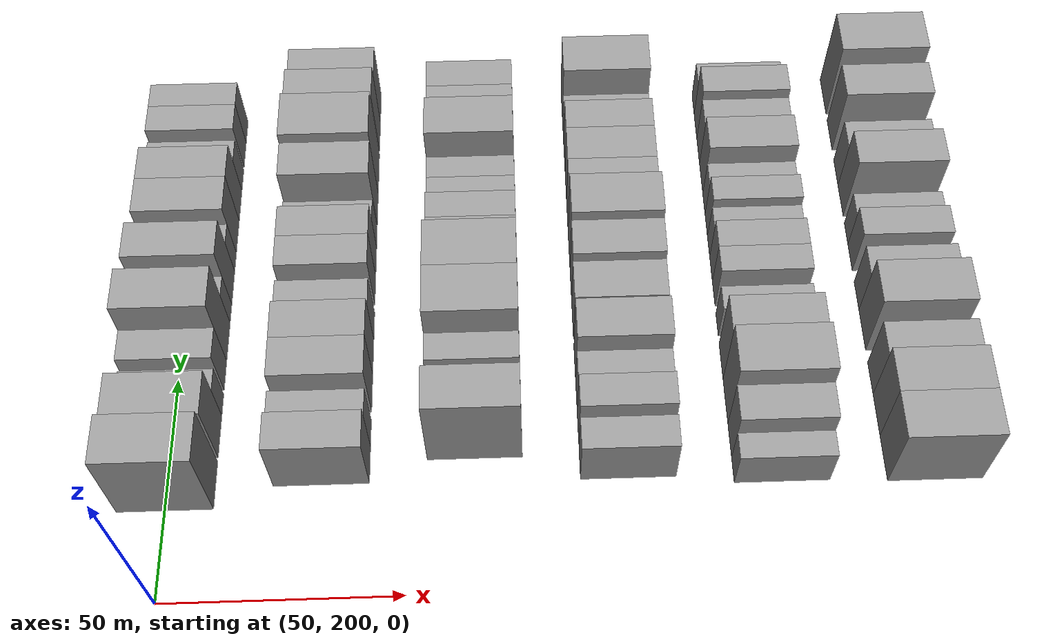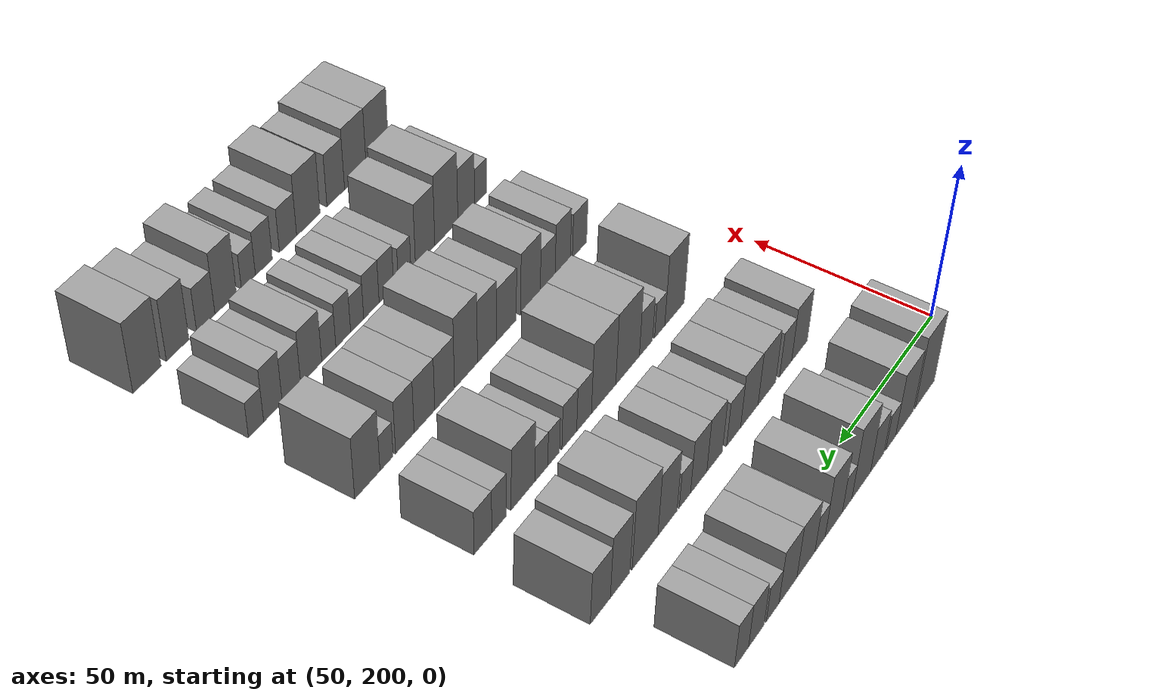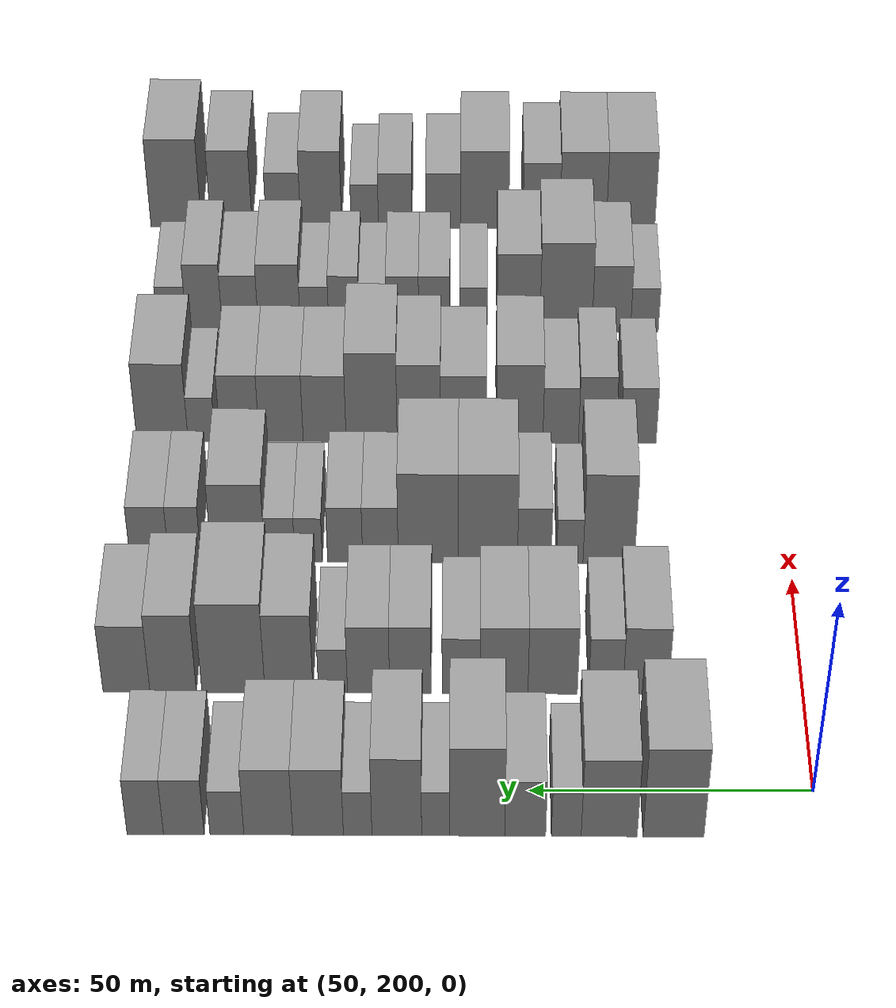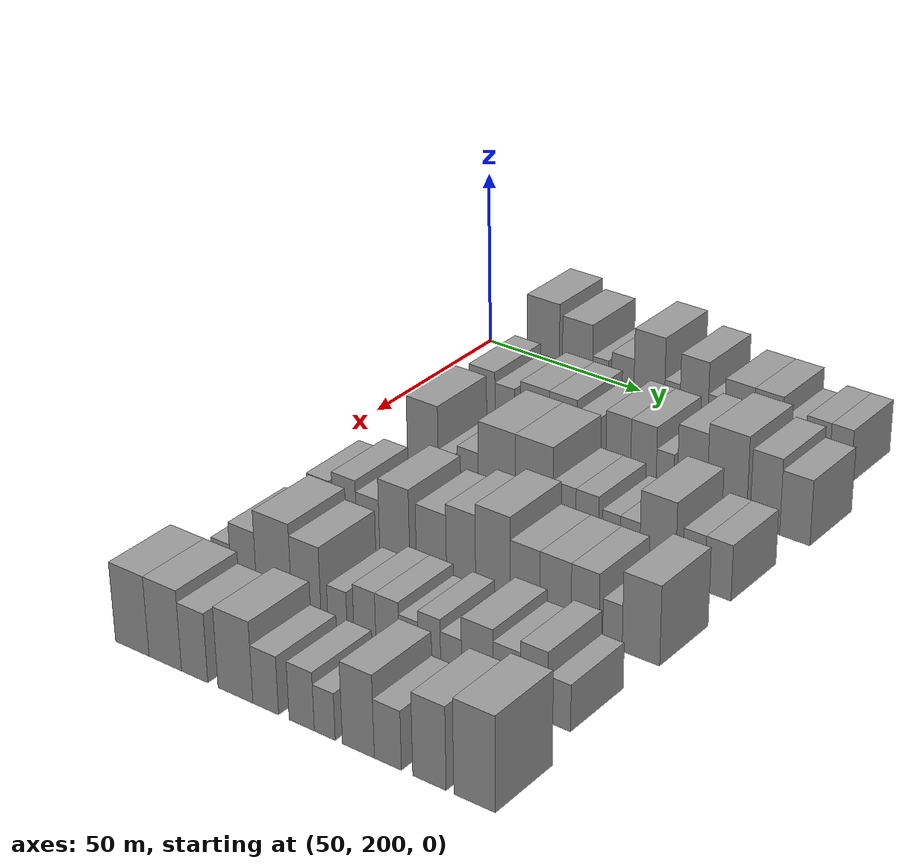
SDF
<sdf version="1.6">
 <world name="default">
  <model name="building_94">
   <static>1</static>
   <pose>50.0000 225.1279 0 0.000000 0.000000 0.000000</pose>
   <link name="link">
    <pose>0 0 12.00 0 0 0</pose>
    <collision name="collision"><geometry><box><size>20.0000 10.5933 24.0000</size></box></geometry></collision>
    <visual name="visual">
     <cast_shadows>0</cast_shadows>
     <geometry><box><size>20.0000 10.5933 24.0000</size></box></geometry>
     <material>
      <script>
       <uri>model://grey_wall/materials/scripts</uri>
       <uri>model://grey_wall/materials/textures</uri>
       <name>vrc/grey_wall</name>
      </script>
     </material>
    </visual>
   </link>
  </model>
  <model name="building_95">
   <static>1</static>
   <pose>50.0000 236.2886 0 0.000000 0.000000 0.000000</pose>
   <link name="link">
    <pose>0 0 10.50 0 0 0</pose>
    <collision name="collision"><geometry><box><size>20.0000 9.7283 21.0000</size></box></geometry></collision>
    <visual name="visual">
     <cast_shadows>0</cast_shadows>
     <geometry><box><size>20.0000 9.7283 21.0000</size></box></geometry>
     <material>
      <script>
       <uri>model://grey_wall/materials/scripts</uri>
       <uri>model://grey_wall/materials/textures</uri>
       <name>vrc/grey_wall</name>
      </script>
     </material>
    </visual>
   </link>
  </model>
  <model name="building_96">
   <static>1</static>
   <pose>50.0000 243.7318 0 0.000000 0.000000 0.000000</pose>
   <link name="link">
    <pose>0 0 6.00 0 0 0</pose>
    <collision name="collision"><geometry><box><size>20.0000 5.1581 12.0000</size></box></geometry></collision>
    <visual name="visual">
     <cast_shadows>0</cast_shadows>
     <geometry><box><size>20.0000 5.1581 12.0000</size></box></geometry>
     <material>
      <script>
       <uri>model://grey_wall/materials/scripts</uri>
       <uri>model://grey_wall/materials/textures</uri>
       <name>vrc/grey_wall</name>
      </script>
     </material>
    </visual>
   </link>
  </model>
  <model name="building_97">
   <static>1</static>
   <pose>50.0000 250.8644 0 0.000000 0.000000 0.000000</pose>
   <link name="link">
    <pose>0 0 7.50 0 0 0</pose>
    <collision name="collision"><geometry><box><size>20.0000 7.1069 15.0000</size></box></geometry></collision>
    <visual name="visual">
     <cast_shadows>0</cast_shadows>
     <geometry><box><size>20.0000 7.1069 15.0000</size></box></geometry>
     <material>
      <script>
       <uri>model://grey_wall/materials/scripts</uri>
       <uri>model://grey_wall/materials/textures</uri>
       <name>vrc/grey_wall</name>
      </script>
     </material>
    </visual>
   </link>
  </model>
  <model name="building_98">
   <static>1</static>
   <pose>50.0000 259.2221 0 0.000000 0.000000 0.000000</pose>
   <link name="link">
    <pose>0 0 12.00 0 0 0</pose>
    <collision name="collision"><geometry><box><size>20.0000 9.6086 24.0000</size></box></geometry></collision>
    <visual name="visual">
     <cast_shadows>0</cast_shadows>
     <geometry><box><size>20.0000 9.6086 24.0000</size></box></geometry>
     <material>
      <script>
       <uri>model://grey_wall/materials/scripts</uri>
       <uri>model://grey_wall/materials/textures</uri>
       <name>vrc/grey_wall</name>
      </script>
     </material>
    </visual>
   </link>
  </model>
  <model name="building_99">
   <static>1</static>
   <pose>50.0000 266.4333 0 0.000000 0.000000 0.000000</pose>
   <link name="link">
    <pose>0 0 6.00 0 0 0</pose>
    <collision name="collision"><geometry><box><size>20.0000 4.8139 12.0000</size></box></geometry></collision>
    <visual name="visual">
     <cast_shadows>0</cast_shadows>
     <geometry><box><size>20.0000 4.8139 12.0000</size></box></geometry>
     <material>
      <script>
       <uri>model://grey_wall/materials/scripts</uri>
       <uri>model://grey_wall/materials/textures</uri>
       <name>vrc/grey_wall</name>
      </script>
     </material>
    </visual>
   </link>
  </model>
  <model name="building_100">
   <static>1</static>
   <pose>50.0000 273.1542 0 0.000000 0.000000 0.000000</pose>
   <link name="link">
    <pose>0 0 10.50 0 0 0</pose>
    <collision name="collision"><geometry><box><size>20.0000 8.6278 21.0000</size></box></geometry></collision>
    <visual name="visual">
     <cast_shadows>0</cast_shadows>
     <geometry><box><size>20.0000 8.6278 21.0000</size></box></geometry>
     <material>
      <script>
       <uri>model://grey_wall/materials/scripts</uri>
       <uri>model://grey_wall/materials/textures</uri>
       <name>vrc/grey_wall</name>
      </script>
     </material>
    </visual>
   </link>
  </model>
  <model name="building_101">
   <static>1</static>
   <pose>50.0000 279.9473 0 0.000000 0.000000 0.000000</pose>
   <link name="link">
    <pose>0 0 6.00 0 0 0</pose>
    <collision name="collision"><geometry><box><size>20.0000 4.9583 12.0000</size></box></geometry></collision>
    <visual name="visual">
     <cast_shadows>0</cast_shadows>
     <geometry><box><size>20.0000 4.9583 12.0000</size></box></geometry>
     <material>
      <script>
       <uri>model://grey_wall/materials/scripts</uri>
       <uri>model://grey_wall/materials/textures</uri>
       <name>vrc/grey_wall</name>
      </script>
     </material>
    </visual>
   </link>
  </model>
  <model name="building_102">
   <static>1</static>
   <pose>50.0000 286.8136 0 0.000000 0.000000 0.000000</pose>
   <link name="link">
    <pose>0 0 9.00 0 0 0</pose>
    <collision name="collision"><geometry><box><size>20.0000 8.7743 18.0000</size></box></geometry></collision>
    <visual name="visual">
     <cast_shadows>0</cast_shadows>
     <geometry><box><size>20.0000 8.7743 18.0000</size></box></geometry>
     <material>
      <script>
       <uri>model://grey_wall/materials/scripts</uri>
       <uri>model://grey_wall/materials/textures</uri>
       <name>vrc/grey_wall</name>
      </script>
     </material>
    </visual>
   </link>
  </model>
  <model name="building_103">
   <static>1</static>
   <pose>50.0000 295.4509 0 0.000000 0.000000 0.000000</pose>
   <link name="link">
    <pose>0 0 9.00 0 0 0</pose>
    <collision name="collision"><geometry><box><size>20.0000 8.5003 18.0000</size></box></geometry></collision>
    <visual name="visual">
     <cast_shadows>0</cast_shadows>
     <geometry><box><size>20.0000 8.5003 18.0000</size></box></geometry>
     <material>
      <script>
       <uri>model://grey_wall/materials/scripts</uri>
       <uri>model://grey_wall/materials/textures</uri>
       <name>vrc/grey_wall</name>
      </script>
     </material>
    </visual>
   </link>
  </model>
  <model name="building_104">
   <static>1</static>
   <pose>50.0000 302.6465 0 0.000000 0.000000 0.000000</pose>
   <link name="link">
    <pose>0 0 6.00 0 0 0</pose>
    <collision name="collision"><geometry><box><size>20.0000 5.8908 12.0000</size></box></geometry></collision>
    <visual name="visual">
     <cast_shadows>0</cast_shadows>
     <geometry><box><size>20.0000 5.8908 12.0000</size></box></geometry>
     <material>
      <script>
       <uri>model://grey_wall/materials/scripts</uri>
       <uri>model://grey_wall/materials/textures</uri>
       <name>vrc/grey_wall</name>
      </script>
     </material>
    </visual>
   </link>
  </model>
  <model name="building_105">
   <static>1</static>
   <pose>50.0000 310.1308 0 0.000000 0.000000 0.000000</pose>
   <link name="link">
    <pose>0 0 7.50 0 0 0</pose>
    <collision name="collision"><geometry><box><size>20.0000 7.0779 15.0000</size></box></geometry></collision>
    <visual name="visual">
     <cast_shadows>0</cast_shadows>
     <geometry><box><size>20.0000 7.0779 15.0000</size></box></geometry>
     <material>
      <script>
       <uri>model://grey_wall/materials/scripts</uri>
       <uri>model://grey_wall/materials/textures</uri>
       <name>vrc/grey_wall</name>
      </script>
     </material>
    </visual>
   </link>
  </model>
  <model name="building_106">
   <static>1</static>
   <pose>50.0000 316.8324 0 0.000000 0.000000 0.000000</pose>
   <link name="link">
    <pose>0 0 7.50 0 0 0</pose>
    <collision name="collision"><geometry><box><size>20.0000 6.3253 15.0000</size></box></geometry></collision>
    <visual name="visual">
     <cast_shadows>0</cast_shadows>
     <geometry><box><size>20.0000 6.3253 15.0000</size></box></geometry>
     <material>
      <script>
       <uri>model://grey_wall/materials/scripts</uri>
       <uri>model://grey_wall/materials/textures</uri>
       <name>vrc/grey_wall</name>
      </script>
     </material>
    </visual>
   </link>
  </model>
  <model name="building_220">
   <static>1</static>
   <pose>82.0000 228.6786 0 0.000000 0.000000 0.000000</pose>
   <link name="link">
    <pose>0 0 9.00 0 0 0</pose>
    <collision name="collision"><geometry><box><size>20.0000 8.2654 18.0000</size></box></geometry></collision>
    <visual name="visual">
     <cast_shadows>0</cast_shadows>
     <geometry><box><size>20.0000 8.2654 18.0000</size></box></geometry>
     <material>
      <script>
       <uri>model://grey_wall/materials/scripts</uri>
       <uri>model://grey_wall/materials/textures</uri>
       <name>vrc/grey_wall</name>
      </script>
     </material>
    </visual>
   </link>
  </model>
  <model name="building_221">
   <static>1</static>
   <pose>82.0000 235.9251 0 0.000000 0.000000 0.000000</pose>
   <link name="link">
    <pose>0 0 7.50 0 0 0</pose>
    <collision name="collision"><geometry><box><size>20.0000 6.2278 15.0000</size></box></geometry></collision>
    <visual name="visual">
     <cast_shadows>0</cast_shadows>
     <geometry><box><size>20.0000 6.2278 15.0000</size></box></geometry>
     <material>
      <script>
       <uri>model://grey_wall/materials/scripts</uri>
       <uri>model://grey_wall/materials/textures</uri>
       <name>vrc/grey_wall</name>
      </script>
     </material>
    </visual>
   </link>
  </model>
  <model name="building_222">
   <static>1</static>
   <pose>82.0000 245.5191 0 0.000000 0.000000 0.000000</pose>
   <link name="link">
    <pose>0 0 9.00 0 0 0</pose>
    <collision name="collision"><geometry><box><size>20.0000 8.9601 18.0000</size></box></geometry></collision>
    <visual name="visual">
     <cast_shadows>0</cast_shadows>
     <geometry><box><size>20.0000 8.9601 18.0000</size></box></geometry>
     <material>
      <script>
       <uri>model://grey_wall/materials/scripts</uri>
       <uri>model://grey_wall/materials/textures</uri>
       <name>vrc/grey_wall</name>
      </script>
     </material>
    </visual>
   </link>
  </model>
  <model name="building_223">
   <static>1</static>
   <pose>82.0000 254.3546 0 0.000000 0.000000 0.000000</pose>
   <link name="link">
    <pose>0 0 9.00 0 0 0</pose>
    <collision name="collision"><geometry><box><size>20.0000 8.7109 18.0000</size></box></geometry></collision>
    <visual name="visual">
     <cast_shadows>0</cast_shadows>
     <geometry><box><size>20.0000 8.7109 18.0000</size></box></geometry>
     <material>
      <script>
       <uri>model://grey_wall/materials/scripts</uri>
       <uri>model://grey_wall/materials/textures</uri>
       <name>vrc/grey_wall</name>
      </script>
     </material>
    </visual>
   </link>
  </model>
  <model name="building_224">
   <static>1</static>
   <pose>82.0000 262.1255 0 0.000000 0.000000 0.000000</pose>
   <link name="link">
    <pose>0 0 7.50 0 0 0</pose>
    <collision name="collision"><geometry><box><size>20.0000 6.8310 15.0000</size></box></geometry></collision>
    <visual name="visual">
     <cast_shadows>0</cast_shadows>
     <geometry><box><size>20.0000 6.8310 15.0000</size></box></geometry>
     <material>
      <script>
       <uri>model://grey_wall/materials/scripts</uri>
       <uri>model://grey_wall/materials/textures</uri>
       <name>vrc/grey_wall</name>
      </script>
     </material>
    </visual>
   </link>
  </model>
  <model name="building_225">
   <static>1</static>
   <pose>82.0000 271.2962 0 0.000000 0.000000 0.000000</pose>
   <link name="link">
    <pose>0 0 9.00 0 0 0</pose>
    <collision name="collision"><geometry><box><size>20.0000 7.5104 18.0000</size></box></geometry></collision>
    <visual name="visual">
     <cast_shadows>0</cast_shadows>
     <geometry><box><size>20.0000 7.5104 18.0000</size></box></geometry>
     <material>
      <script>
       <uri>model://grey_wall/materials/scripts</uri>
       <uri>model://grey_wall/materials/textures</uri>
       <name>vrc/grey_wall</name>
      </script>
     </material>
    </visual>
   </link>
  </model>
  <model name="building_226">
   <static>1</static>
   <pose>82.0000 278.8801 0 0.000000 0.000000 0.000000</pose>
   <link name="link">
    <pose>0 0 9.00 0 0 0</pose>
    <collision name="collision"><geometry><box><size>20.0000 7.6573 18.0000</size></box></geometry></collision>
    <visual name="visual">
     <cast_shadows>0</cast_shadows>
     <geometry><box><size>20.0000 7.6573 18.0000</size></box></geometry>
     <material>
      <script>
       <uri>model://grey_wall/materials/scripts</uri>
       <uri>model://grey_wall/materials/textures</uri>
       <name>vrc/grey_wall</name>
      </script>
     </material>
    </visual>
   </link>
  </model>
  <model name="building_227">
   <static>1</static>
   <pose>82.0000 285.3272 0 0.000000 0.000000 0.000000</pose>
   <link name="link">
    <pose>0 0 6.00 0 0 0</pose>
    <collision name="collision"><geometry><box><size>20.0000 5.2370 12.0000</size></box></geometry></collision>
    <visual name="visual">
     <cast_shadows>0</cast_shadows>
     <geometry><box><size>20.0000 5.2370 12.0000</size></box></geometry>
     <material>
      <script>
       <uri>model://grey_wall/materials/scripts</uri>
       <uri>model://grey_wall/materials/textures</uri>
       <name>vrc/grey_wall</name>
      </script>
     </material>
    </visual>
   </link>
  </model>
  <model name="building_228">
   <static>1</static>
   <pose>82.0000 293.3117 0 0.000000 0.000000 0.000000</pose>
   <link name="link">
    <pose>0 0 10.50 0 0 0</pose>
    <collision name="collision"><geometry><box><size>20.0000 8.7321 21.0000</size></box></geometry></collision>
    <visual name="visual">
     <cast_shadows>0</cast_shadows>
     <geometry><box><size>20.0000 8.7321 21.0000</size></box></geometry>
     <material>
      <script>
       <uri>model://grey_wall/materials/scripts</uri>
       <uri>model://grey_wall/materials/textures</uri>
       <name>vrc/grey_wall</name>
      </script>
     </material>
    </visual>
   </link>
  </model>
  <model name="building_229">
   <static>1</static>
   <pose>82.0000 303.3961 0 0.000000 0.000000 0.000000</pose>
   <link name="link">
    <pose>0 0 12.00 0 0 0</pose>
    <collision name="collision"><geometry><box><size>20.0000 11.4367 24.0000</size></box></geometry></collision>
    <visual name="visual">
     <cast_shadows>0</cast_shadows>
     <geometry><box><size>20.0000 11.4367 24.0000</size></box></geometry>
     <material>
      <script>
       <uri>model://grey_wall/materials/scripts</uri>
       <uri>model://grey_wall/materials/textures</uri>
       <name>vrc/grey_wall</name>
      </script>
     </material>
    </visual>
   </link>
  </model>
  <model name="building_230">
   <static>1</static>
   <pose>82.0000 314.3326 0 0.000000 0.000000 0.000000</pose>
   <link name="link">
    <pose>0 0 10.50 0 0 0</pose>
    <collision name="collision"><geometry><box><size>20.0000 8.4361 21.0000</size></box></geometry></collision>
    <visual name="visual">
     <cast_shadows>0</cast_shadows>
     <geometry><box><size>20.0000 8.4361 21.0000</size></box></geometry>
     <material>
      <script>
       <uri>model://grey_wall/materials/scripts</uri>
       <uri>model://grey_wall/materials/textures</uri>
       <name>vrc/grey_wall</name>
      </script>
     </material>
    </visual>
   </link>
  </model>
  <model name="building_231">
   <static>1</static>
   <pose>82.0000 322.8037 0 0.000000 0.000000 0.000000</pose>
   <link name="link">
    <pose>0 0 9.00 0 0 0</pose>
    <collision name="collision"><geometry><box><size>20.0000 8.5062 18.0000</size></box></geometry></collision>
    <visual name="visual">
     <cast_shadows>0</cast_shadows>
     <geometry><box><size>20.0000 8.5062 18.0000</size></box></geometry>
     <material>
      <script>
       <uri>model://grey_wall/materials/scripts</uri>
       <uri>model://grey_wall/materials/textures</uri>
       <name>vrc/grey_wall</name>
      </script>
     </material>
    </visual>
   </link>
  </model>
  <model name="building_347">
   <static>1</static>
   <pose>114.0000 234.3363 0 0.000000 0.000000 0.000000</pose>
   <link name="link">
    <pose>0 0 12.00 0 0 0</pose>
    <collision name="collision"><geometry><box><size>20.0000 9.7286 24.0000</size></box></geometry></collision>
    <visual name="visual">
     <cast_shadows>0</cast_shadows>
     <geometry><box><size>20.0000 9.7286 24.0000</size></box></geometry>
     <material>
      <script>
       <uri>model://grey_wall/materials/scripts</uri>
       <uri>model://grey_wall/materials/textures</uri>
       <name>vrc/grey_wall</name>
      </script>
     </material>
    </visual>
   </link>
  </model>
  <model name="building_348">
   <static>1</static>
   <pose>114.0000 241.6982 0 0.000000 0.000000 0.000000</pose>
   <link name="link">
    <pose>0 0 6.00 0 0 0</pose>
    <collision name="collision"><geometry><box><size>20.0000 4.9952 12.0000</size></box></geometry></collision>
    <visual name="visual">
     <cast_shadows>0</cast_shadows>
     <geometry><box><size>20.0000 4.9952 12.0000</size></box></geometry>
     <material>
      <script>
       <uri>model://grey_wall/materials/scripts</uri>
       <uri>model://grey_wall/materials/textures</uri>
       <name>vrc/grey_wall</name>
      </script>
     </material>
    </visual>
   </link>
  </model>
  <model name="building_349">
   <static>1</static>
   <pose>114.0000 248.3928 0 0.000000 0.000000 0.000000</pose>
   <link name="link">
    <pose>0 0 7.50 0 0 0</pose>
    <collision name="collision"><geometry><box><size>20.0000 6.3942 15.0000</size></box></geometry></collision>
    <visual name="visual">
     <cast_shadows>0</cast_shadows>
     <geometry><box><size>20.0000 6.3942 15.0000</size></box></geometry>
     <material>
      <script>
       <uri>model://grey_wall/materials/scripts</uri>
       <uri>model://grey_wall/materials/textures</uri>
       <name>vrc/grey_wall</name>
      </script>
     </material>
    </visual>
   </link>
  </model>
  <model name="building_350">
   <static>1</static>
   <pose>114.0000 257.1950 0 0.000000 0.000000 0.000000</pose>
   <link name="link">
    <pose>0 0 12.00 0 0 0</pose>
    <collision name="collision"><geometry><box><size>20.0000 11.2101 24.0000</size></box></geometry></collision>
    <visual name="visual">
     <cast_shadows>0</cast_shadows>
     <geometry><box><size>20.0000 11.2101 24.0000</size></box></geometry>
     <material>
      <script>
       <uri>model://grey_wall/materials/scripts</uri>
       <uri>model://grey_wall/materials/textures</uri>
       <name>vrc/grey_wall</name>
      </script>
     </material>
    </visual>
   </link>
  </model>
  <model name="building_351">
   <static>1</static>
   <pose>114.0000 268.4526 0 0.000000 0.000000 0.000000</pose>
   <link name="link">
    <pose>0 0 12.00 0 0 0</pose>
    <collision name="collision"><geometry><box><size>20.0000 11.3052 24.0000</size></box></geometry></collision>
    <visual name="visual">
     <cast_shadows>0</cast_shadows>
     <geometry><box><size>20.0000 11.3052 24.0000</size></box></geometry>
     <material>
      <script>
       <uri>model://grey_wall/materials/scripts</uri>
       <uri>model://grey_wall/materials/textures</uri>
       <name>vrc/grey_wall</name>
      </script>
     </material>
    </visual>
   </link>
  </model>
  <model name="building_352">
   <static>1</static>
   <pose>114.0000 277.4631 0 0.000000 0.000000 0.000000</pose>
   <link name="link">
    <pose>0 0 7.50 0 0 0</pose>
    <collision name="collision"><geometry><box><size>20.0000 6.7157 15.0000</size></box></geometry></collision>
    <visual name="visual">
     <cast_shadows>0</cast_shadows>
     <geometry><box><size>20.0000 6.7157 15.0000</size></box></geometry>
     <material>
      <script>
       <uri>model://grey_wall/materials/scripts</uri>
       <uri>model://grey_wall/materials/textures</uri>
       <name>vrc/grey_wall</name>
      </script>
     </material>
    </visual>
   </link>
  </model>
  <model name="building_353">
   <static>1</static>
   <pose>114.0000 284.1333 0 0.000000 0.000000 0.000000</pose>
   <link name="link">
    <pose>0 0 7.50 0 0 0</pose>
    <collision name="collision"><geometry><box><size>20.0000 6.6247 15.0000</size></box></geometry></collision>
    <visual name="visual">
     <cast_shadows>0</cast_shadows>
     <geometry><box><size>20.0000 6.6247 15.0000</size></box></geometry>
     <material>
      <script>
       <uri>model://grey_wall/materials/scripts</uri>
       <uri>model://grey_wall/materials/textures</uri>
       <name>vrc/grey_wall</name>
      </script>
     </material>
    </visual>
   </link>
  </model>
  <model name="building_354">
   <static>1</static>
   <pose>114.0000 291.0380 0 0.000000 0.000000 0.000000</pose>
   <link name="link">
    <pose>0 0 6.00 0 0 0</pose>
    <collision name="collision"><geometry><box><size>20.0000 5.1848 12.0000</size></box></geometry></collision>
    <visual name="visual">
     <cast_shadows>0</cast_shadows>
     <geometry><box><size>20.0000 5.1848 12.0000</size></box></geometry>
     <material>
      <script>
       <uri>model://grey_wall/materials/scripts</uri>
       <uri>model://grey_wall/materials/textures</uri>
       <name>vrc/grey_wall</name>
      </script>
     </material>
    </visual>
   </link>
  </model>
  <model name="building_355">
   <static>1</static>
   <pose>114.0000 296.4547 0 0.000000 0.000000 0.000000</pose>
   <link name="link">
    <pose>0 0 6.00 0 0 0</pose>
    <collision name="collision"><geometry><box><size>20.0000 5.6485 12.0000</size></box></geometry></collision>
    <visual name="visual">
     <cast_shadows>0</cast_shadows>
     <geometry><box><size>20.0000 5.6485 12.0000</size></box></geometry>
     <material>
      <script>
       <uri>model://grey_wall/materials/scripts</uri>
       <uri>model://grey_wall/materials/textures</uri>
       <name>vrc/grey_wall</name>
      </script>
     </material>
    </visual>
   </link>
  </model>
  <model name="building_356">
   <static>1</static>
   <pose>114.0000 304.3384 0 0.000000 0.000000 0.000000</pose>
   <link name="link">
    <pose>0 0 10.50 0 0 0</pose>
    <collision name="collision"><geometry><box><size>20.0000 10.1188 21.0000</size></box></geometry></collision>
    <visual name="visual">
     <cast_shadows>0</cast_shadows>
     <geometry><box><size>20.0000 10.1188 21.0000</size></box></geometry>
     <material>
      <script>
       <uri>model://grey_wall/materials/scripts</uri>
       <uri>model://grey_wall/materials/textures</uri>
       <name>vrc/grey_wall</name>
      </script>
     </material>
    </visual>
   </link>
  </model>
  <model name="building_357">
   <static>1</static>
   <pose>114.0000 314.4552 0 0.000000 0.000000 0.000000</pose>
   <link name="link">
    <pose>0 0 7.50 0 0 0</pose>
    <collision name="collision"><geometry><box><size>20.0000 6.1148 15.0000</size></box></geometry></collision>
    <visual name="visual">
     <cast_shadows>0</cast_shadows>
     <geometry><box><size>20.0000 6.1148 15.0000</size></box></geometry>
     <material>
      <script>
       <uri>model://grey_wall/materials/scripts</uri>
       <uri>model://grey_wall/materials/textures</uri>
       <name>vrc/grey_wall</name>
      </script>
     </material>
    </visual>
   </link>
  </model>
  <model name="building_358">
   <static>1</static>
   <pose>114.0000 321.1528 0 0.000000 0.000000 0.000000</pose>
   <link name="link">
    <pose>0 0 7.50 0 0 0</pose>
    <collision name="collision"><geometry><box><size>20.0000 7.2803 15.0000</size></box></geometry></collision>
    <visual name="visual">
     <cast_shadows>0</cast_shadows>
     <geometry><box><size>20.0000 7.2803 15.0000</size></box></geometry>
     <material>
      <script>
       <uri>model://grey_wall/materials/scripts</uri>
       <uri>model://grey_wall/materials/textures</uri>
       <name>vrc/grey_wall</name>
      </script>
     </material>
    </visual>
   </link>
  </model>
  <model name="building_458">
   <static>1</static>
   <pose>146.0000 227.4841 0 0.000000 0.000000 0.000000</pose>
   <link name="link">
    <pose>0 0 7.50 0 0 0</pose>
    <collision name="collision"><geometry><box><size>20.0000 7.0042 15.0000</size></box></geometry></collision>
    <visual name="visual">
     <cast_shadows>0</cast_shadows>
     <geometry><box><size>20.0000 7.0042 15.0000</size></box></geometry>
     <material>
      <script>
       <uri>model://grey_wall/materials/scripts</uri>
       <uri>model://grey_wall/materials/textures</uri>
       <name>vrc/grey_wall</name>
      </script>
     </material>
    </visual>
   </link>
  </model>
  <model name="building_459">
   <static>1</static>
   <pose>146.0000 235.6304 0 0.000000 0.000000 0.000000</pose>
   <link name="link">
    <pose>0 0 9.00 0 0 0</pose>
    <collision name="collision"><geometry><box><size>20.0000 7.2883 18.0000</size></box></geometry></collision>
    <visual name="visual">
     <cast_shadows>0</cast_shadows>
     <geometry><box><size>20.0000 7.2883 18.0000</size></box></geometry>
     <material>
      <script>
       <uri>model://grey_wall/materials/scripts</uri>
       <uri>model://grey_wall/materials/textures</uri>
       <name>vrc/grey_wall</name>
      </script>
     </material>
    </visual>
   </link>
  </model>
  <model name="building_460">
   <static>1</static>
   <pose>146.0000 242.7772 0 0.000000 0.000000 0.000000</pose>
   <link name="link">
    <pose>0 0 7.50 0 0 0</pose>
    <collision name="collision"><geometry><box><size>20.0000 7.0054 15.0000</size></box></geometry></collision>
    <visual name="visual">
     <cast_shadows>0</cast_shadows>
     <geometry><box><size>20.0000 7.0054 15.0000</size></box></geometry>
     <material>
      <script>
       <uri>model://grey_wall/materials/scripts</uri>
       <uri>model://grey_wall/materials/textures</uri>
       <name>vrc/grey_wall</name>
      </script>
     </material>
    </visual>
   </link>
  </model>
  <model name="building_461">
   <static>1</static>
   <pose>146.0000 250.8493 0 0.000000 0.000000 0.000000</pose>
   <link name="link">
    <pose>0 0 10.50 0 0 0</pose>
    <collision name="collision"><geometry><box><size>20.0000 9.1389 21.0000</size></box></geometry></collision>
    <visual name="visual">
     <cast_shadows>0</cast_shadows>
     <geometry><box><size>20.0000 9.1389 21.0000</size></box></geometry>
     <material>
      <script>
       <uri>model://grey_wall/materials/scripts</uri>
       <uri>model://grey_wall/materials/textures</uri>
       <name>vrc/grey_wall</name>
      </script>
     </material>
    </visual>
   </link>
  </model>
  <model name="building_462">
   <static>1</static>
   <pose>146.0000 261.9082 0 0.000000 0.000000 0.000000</pose>
   <link name="link">
    <pose>0 0 9.00 0 0 0</pose>
    <collision name="collision"><geometry><box><size>20.0000 8.9789 18.0000</size></box></geometry></collision>
    <visual name="visual">
     <cast_shadows>0</cast_shadows>
     <geometry><box><size>20.0000 8.9789 18.0000</size></box></geometry>
     <material>
      <script>
       <uri>model://grey_wall/materials/scripts</uri>
       <uri>model://grey_wall/materials/textures</uri>
       <name>vrc/grey_wall</name>
      </script>
     </material>
    </visual>
   </link>
  </model>
  <model name="building_463">
   <static>1</static>
   <pose>146.0000 270.6657 0 0.000000 0.000000 0.000000</pose>
   <link name="link">
    <pose>0 0 10.50 0 0 0</pose>
    <collision name="collision"><geometry><box><size>20.0000 8.5362 21.0000</size></box></geometry></collision>
    <visual name="visual">
     <cast_shadows>0</cast_shadows>
     <geometry><box><size>20.0000 8.5362 21.0000</size></box></geometry>
     <material>
      <script>
       <uri>model://grey_wall/materials/scripts</uri>
       <uri>model://grey_wall/materials/textures</uri>
       <name>vrc/grey_wall</name>
      </script>
     </material>
    </visual>
   </link>
  </model>
  <model name="building_464">
   <static>1</static>
   <pose>146.0000 279.9501 0 0.000000 0.000000 0.000000</pose>
   <link name="link">
    <pose>0 0 12.00 0 0 0</pose>
    <collision name="collision"><geometry><box><size>20.0000 10.0325 24.0000</size></box></geometry></collision>
    <visual name="visual">
     <cast_shadows>0</cast_shadows>
     <geometry><box><size>20.0000 10.0325 24.0000</size></box></geometry>
     <material>
      <script>
       <uri>model://grey_wall/materials/scripts</uri>
       <uri>model://grey_wall/materials/textures</uri>
       <name>vrc/grey_wall</name>
      </script>
     </material>
    </visual>
   </link>
  </model>
  <model name="building_465">
   <static>1</static>
   <pose>146.0000 289.1864 0 0.000000 0.000000 0.000000</pose>
   <link name="link">
    <pose>0 0 9.00 0 0 0</pose>
    <collision name="collision"><geometry><box><size>20.0000 8.4400 18.0000</size></box></geometry></collision>
    <visual name="visual">
     <cast_shadows>0</cast_shadows>
     <geometry><box><size>20.0000 8.4400 18.0000</size></box></geometry>
     <material>
      <script>
       <uri>model://grey_wall/materials/scripts</uri>
       <uri>model://grey_wall/materials/textures</uri>
       <name>vrc/grey_wall</name>
      </script>
     </material>
    </visual>
   </link>
  </model>
  <model name="building_466">
   <static>1</static>
   <pose>146.0000 297.7443 0 0.000000 0.000000 0.000000</pose>
   <link name="link">
    <pose>0 0 9.00 0 0 0</pose>
    <collision name="collision"><geometry><box><size>20.0000 8.6758 18.0000</size></box></geometry></collision>
    <visual name="visual">
     <cast_shadows>0</cast_shadows>
     <geometry><box><size>20.0000 8.6758 18.0000</size></box></geometry>
     <material>
      <script>
       <uri>model://grey_wall/materials/scripts</uri>
       <uri>model://grey_wall/materials/textures</uri>
       <name>vrc/grey_wall</name>
      </script>
     </material>
    </visual>
   </link>
  </model>
  <model name="building_467">
   <static>1</static>
   <pose>146.0000 305.9208 0 0.000000 0.000000 0.000000</pose>
   <link name="link">
    <pose>0 0 9.00 0 0 0</pose>
    <collision name="collision"><geometry><box><size>20.0000 7.6772 18.0000</size></box></geometry></collision>
    <visual name="visual">
     <cast_shadows>0</cast_shadows>
     <geometry><box><size>20.0000 7.6772 18.0000</size></box></geometry>
     <material>
      <script>
       <uri>model://grey_wall/materials/scripts</uri>
       <uri>model://grey_wall/materials/textures</uri>
       <name>vrc/grey_wall</name>
      </script>
     </material>
    </visual>
   </link>
  </model>
  <model name="building_468">
   <static>1</static>
   <pose>146.0000 313.4231 0 0.000000 0.000000 0.000000</pose>
   <link name="link">
    <pose>0 0 6.00 0 0 0</pose>
    <collision name="collision"><geometry><box><size>20.0000 5.3275 12.0000</size></box></geometry></collision>
    <visual name="visual">
     <cast_shadows>0</cast_shadows>
     <geometry><box><size>20.0000 5.3275 12.0000</size></box></geometry>
     <material>
      <script>
       <uri>model://grey_wall/materials/scripts</uri>
       <uri>model://grey_wall/materials/textures</uri>
       <name>vrc/grey_wall</name>
      </script>
     </material>
    </visual>
   </link>
  </model>
  <model name="building_469">
   <static>1</static>
   <pose>146.0000 321.1285 0 0.000000 0.000000 0.000000</pose>
   <link name="link">
    <pose>0 0 10.50 0 0 0</pose>
    <collision name="collision"><geometry><box><size>20.0000 10.0833 21.0000</size></box></geometry></collision>
    <visual name="visual">
     <cast_shadows>0</cast_shadows>
     <geometry><box><size>20.0000 10.0833 21.0000</size></box></geometry>
     <material>
      <script>
       <uri>model://grey_wall/materials/scripts</uri>
       <uri>model://grey_wall/materials/textures</uri>
       <name>vrc/grey_wall</name>
      </script>
     </material>
    </visual>
   </link>
  </model>
  <model name="building_585">
   <static>1</static>
   <pose>178.0000 224.9964 0 0.000000 0.000000 0.000000</pose>
   <link name="link">
    <pose>0 0 6.00 0 0 0</pose>
    <collision name="collision"><geometry><box><size>20.0000 5.6981 12.0000</size></box></geometry></collision>
    <visual name="visual">
     <cast_shadows>0</cast_shadows>
     <geometry><box><size>20.0000 5.6981 12.0000</size></box></geometry>
     <material>
      <script>
       <uri>model://grey_wall/materials/scripts</uri>
       <uri>model://grey_wall/materials/textures</uri>
       <name>vrc/grey_wall</name>
      </script>
     </material>
    </visual>
   </link>
  </model>
  <model name="building_586">
   <static>1</static>
   <pose>178.0000 231.7770 0 0.000000 0.000000 0.000000</pose>
   <link name="link">
    <pose>0 0 9.00 0 0 0</pose>
    <collision name="collision"><geometry><box><size>20.0000 7.8631 18.0000</size></box></geometry></collision>
    <visual name="visual">
     <cast_shadows>0</cast_shadows>
     <geometry><box><size>20.0000 7.8631 18.0000</size></box></geometry>
     <material>
      <script>
       <uri>model://grey_wall/materials/scripts</uri>
       <uri>model://grey_wall/materials/textures</uri>
       <name>vrc/grey_wall</name>
      </script>
     </material>
    </visual>
   </link>
  </model>
  <model name="building_587">
   <static>1</static>
   <pose>178.0000 241.0369 0 0.000000 0.000000 0.000000</pose>
   <link name="link">
    <pose>0 0 12.00 0 0 0</pose>
    <collision name="collision"><geometry><box><size>20.0000 10.6567 24.0000</size></box></geometry></collision>
    <visual name="visual">
     <cast_shadows>0</cast_shadows>
     <geometry><box><size>20.0000 10.6567 24.0000</size></box></geometry>
     <material>
      <script>
       <uri>model://grey_wall/materials/scripts</uri>
       <uri>model://grey_wall/materials/textures</uri>
       <name>vrc/grey_wall</name>
      </script>
     </material>
    </visual>
   </link>
  </model>
  <model name="building_588">
   <static>1</static>
   <pose>178.0000 250.7527 0 0.000000 0.000000 0.000000</pose>
   <link name="link">
    <pose>0 0 10.50 0 0 0</pose>
    <collision name="collision"><geometry><box><size>20.0000 8.7750 21.0000</size></box></geometry></collision>
    <visual name="visual">
     <cast_shadows>0</cast_shadows>
     <geometry><box><size>20.0000 8.7750 21.0000</size></box></geometry>
     <material>
      <script>
       <uri>model://grey_wall/materials/scripts</uri>
       <uri>model://grey_wall/materials/textures</uri>
       <name>vrc/grey_wall</name>
      </script>
     </material>
    </visual>
   </link>
  </model>
  <model name="building_589">
   <static>1</static>
   <pose>178.0000 259.9557 0 0.000000 0.000000 0.000000</pose>
   <link name="link">
    <pose>0 0 6.00 0 0 0</pose>
    <collision name="collision"><geometry><box><size>20.0000 5.6312 12.0000</size></box></geometry></collision>
    <visual name="visual">
     <cast_shadows>0</cast_shadows>
     <geometry><box><size>20.0000 5.6312 12.0000</size></box></geometry>
     <material>
      <script>
       <uri>model://grey_wall/materials/scripts</uri>
       <uri>model://grey_wall/materials/textures</uri>
       <name>vrc/grey_wall</name>
      </script>
     </material>
    </visual>
   </link>
  </model>
  <model name="building_590">
   <static>1</static>
   <pose>178.0000 267.9493 0 0.000000 0.000000 0.000000</pose>
   <link name="link">
    <pose>0 0 7.50 0 0 0</pose>
    <collision name="collision"><geometry><box><size>20.0000 6.3559 15.0000</size></box></geometry></collision>
    <visual name="visual">
     <cast_shadows>0</cast_shadows>
     <geometry><box><size>20.0000 6.3559 15.0000</size></box></geometry>
     <material>
      <script>
       <uri>model://grey_wall/materials/scripts</uri>
       <uri>model://grey_wall/materials/textures</uri>
       <name>vrc/grey_wall</name>
      </script>
     </material>
    </visual>
   </link>
  </model>
  <model name="building_591">
   <static>1</static>
   <pose>178.0000 274.4522 0 0.000000 0.000000 0.000000</pose>
   <link name="link">
    <pose>0 0 7.50 0 0 0</pose>
    <collision name="collision"><geometry><box><size>20.0000 6.6498 15.0000</size></box></geometry></collision>
    <visual name="visual">
     <cast_shadows>0</cast_shadows>
     <geometry><box><size>20.0000 6.6498 15.0000</size></box></geometry>
     <material>
      <script>
       <uri>model://grey_wall/materials/scripts</uri>
       <uri>model://grey_wall/materials/textures</uri>
       <name>vrc/grey_wall</name>
      </script>
     </material>
    </visual>
   </link>
  </model>
  <model name="building_592">
   <static>1</static>
   <pose>178.0000 280.5547 0 0.000000 0.000000 0.000000</pose>
   <link name="link">
    <pose>0 0 6.00 0 0 0</pose>
    <collision name="collision"><geometry><box><size>20.0000 5.5552 12.0000</size></box></geometry></collision>
    <visual name="visual">
     <cast_shadows>0</cast_shadows>
     <geometry><box><size>20.0000 5.5552 12.0000</size></box></geometry>
     <material>
      <script>
       <uri>model://grey_wall/materials/scripts</uri>
       <uri>model://grey_wall/materials/textures</uri>
       <name>vrc/grey_wall</name>
      </script>
     </material>
    </visual>
   </link>
  </model>
  <model name="building_593">
   <static>1</static>
   <pose>178.0000 286.4161 0 0.000000 0.000000 0.000000</pose>
   <link name="link">
    <pose>0 0 7.50 0 0 0</pose>
    <collision name="collision"><geometry><box><size>20.0000 6.1675 15.0000</size></box></geometry></collision>
    <visual name="visual">
     <cast_shadows>0</cast_shadows>
     <geometry><box><size>20.0000 6.1675 15.0000</size></box></geometry>
     <material>
      <script>
       <uri>model://grey_wall/materials/scripts</uri>
       <uri>model://grey_wall/materials/textures</uri>
       <name>vrc/grey_wall</name>
      </script>
     </material>
    </visual>
   </link>
  </model>
  <model name="building_594">
   <static>1</static>
   <pose>178.0000 292.4147 0 0.000000 0.000000 0.000000</pose>
   <link name="link">
    <pose>0 0 6.00 0 0 0</pose>
    <collision name="collision"><geometry><box><size>20.0000 5.8299 12.0000</size></box></geometry></collision>
    <visual name="visual">
     <cast_shadows>0</cast_shadows>
     <geometry><box><size>20.0000 5.8299 12.0000</size></box></geometry>
     <material>
      <script>
       <uri>model://grey_wall/materials/scripts</uri>
       <uri>model://grey_wall/materials/textures</uri>
       <name>vrc/grey_wall</name>
      </script>
     </material>
    </visual>
   </link>
  </model>
  <model name="building_595">
   <static>1</static>
   <pose>178.0000 299.6330 0 0.000000 0.000000 0.000000</pose>
   <link name="link">
    <pose>0 0 9.00 0 0 0</pose>
    <collision name="collision"><geometry><box><size>20.0000 8.6067 18.0000</size></box></geometry></collision>
    <visual name="visual">
     <cast_shadows>0</cast_shadows>
     <geometry><box><size>20.0000 8.6067 18.0000</size></box></geometry>
     <material>
      <script>
       <uri>model://grey_wall/materials/scripts</uri>
       <uri>model://grey_wall/materials/textures</uri>
       <name>vrc/grey_wall</name>
      </script>
     </material>
    </visual>
   </link>
  </model>
  <model name="building_596">
   <static>1</static>
   <pose>178.0000 307.6259 0 0.000000 0.000000 0.000000</pose>
   <link name="link">
    <pose>0 0 7.50 0 0 0</pose>
    <collision name="collision"><geometry><box><size>20.0000 7.3790 15.0000</size></box></geometry></collision>
    <visual name="visual">
     <cast_shadows>0</cast_shadows>
     <geometry><box><size>20.0000 7.3790 15.0000</size></box></geometry>
     <material>
      <script>
       <uri>model://grey_wall/materials/scripts</uri>
       <uri>model://grey_wall/materials/textures</uri>
       <name>vrc/grey_wall</name>
      </script>
     </material>
    </visual>
   </link>
  </model>
  <model name="building_597">
   <static>1</static>
   <pose>178.0000 314.9743 0 0.000000 0.000000 0.000000</pose>
   <link name="link">
    <pose>0 0 9.00 0 0 0</pose>
    <collision name="collision"><geometry><box><size>20.0000 7.3178 18.0000</size></box></geometry></collision>
    <visual name="visual">
     <cast_shadows>0</cast_shadows>
     <geometry><box><size>20.0000 7.3178 18.0000</size></box></geometry>
     <material>
      <script>
       <uri>model://grey_wall/materials/scripts</uri>
       <uri>model://grey_wall/materials/textures</uri>
       <name>vrc/grey_wall</name>
      </script>
     </material>
    </visual>
   </link>
  </model>
  <model name="building_598">
   <static>1</static>
   <pose>178.0000 321.5917 0 0.000000 0.000000 0.000000</pose>
   <link name="link">
    <pose>0 0 6.00 0 0 0</pose>
    <collision name="collision"><geometry><box><size>20.0000 5.9168 12.0000</size></box></geometry></collision>
    <visual name="visual">
     <cast_shadows>0</cast_shadows>
     <geometry><box><size>20.0000 5.9168 12.0000</size></box></geometry>
     <material>
      <script>
       <uri>model://grey_wall/materials/scripts</uri>
       <uri>model://grey_wall/materials/textures</uri>
       <name>vrc/grey_wall</name>
      </script>
     </material>
    </visual>
   </link>
  </model>
  <model name="building_708">
   <static>1</static>
   <pose>210.0000 226.6443 0 0.000000 0.000000 0.000000</pose>
   <link name="link">
    <pose>0 0 10.50 0 0 0</pose>
    <collision name="collision"><geometry><box><size>20.0000 10.3098 21.0000</size></box></geometry></collision>
    <visual name="visual">
     <cast_shadows>0</cast_shadows>
     <geometry><box><size>20.0000 10.3098 21.0000</size></box></geometry>
     <material>
      <script>
       <uri>model://grey_wall/materials/scripts</uri>
       <uri>model://grey_wall/materials/textures</uri>
       <name>vrc/grey_wall</name>
      </script>
     </material>
    </visual>
   </link>
  </model>
  <model name="building_709">
   <static>1</static>
   <pose>210.0000 236.7233 0 0.000000 0.000000 0.000000</pose>
   <link name="link">
    <pose>0 0 10.50 0 0 0</pose>
    <collision name="collision"><geometry><box><size>20.0000 9.8481 21.0000</size></box></geometry></collision>
    <visual name="visual">
     <cast_shadows>0</cast_shadows>
     <geometry><box><size>20.0000 9.8481 21.0000</size></box></geometry>
     <material>
      <script>
       <uri>model://grey_wall/materials/scripts</uri>
       <uri>model://grey_wall/materials/textures</uri>
       <name>vrc/grey_wall</name>
      </script>
     </material>
    </visual>
   </link>
  </model>
  <model name="building_710">
   <static>1</static>
   <pose>210.0000 245.5710 0 0.000000 0.000000 0.000000</pose>
   <link name="link">
    <pose>0 0 9.00 0 0 0</pose>
    <collision name="collision"><geometry><box><size>20.0000 7.8474 18.0000</size></box></geometry></collision>
    <visual name="visual">
     <cast_shadows>0</cast_shadows>
     <geometry><box><size>20.0000 7.8474 18.0000</size></box></geometry>
     <material>
      <script>
       <uri>model://grey_wall/materials/scripts</uri>
       <uri>model://grey_wall/materials/textures</uri>
       <name>vrc/grey_wall</name>
      </script>
     </material>
    </visual>
   </link>
  </model>
  <model name="building_711">
   <static>1</static>
   <pose>210.0000 257.5992 0 0.000000 0.000000 0.000000</pose>
   <link name="link">
    <pose>0 0 10.50 0 0 0</pose>
    <collision name="collision"><geometry><box><size>20.0000 10.2088 21.0000</size></box></geometry></collision>
    <visual name="visual">
     <cast_shadows>0</cast_shadows>
     <geometry><box><size>20.0000 10.2088 21.0000</size></box></geometry>
     <material>
      <script>
       <uri>model://grey_wall/materials/scripts</uri>
       <uri>model://grey_wall/materials/textures</uri>
       <name>vrc/grey_wall</name>
      </script>
     </material>
    </visual>
   </link>
  </model>
  <model name="building_712">
   <static>1</static>
   <pose>210.0000 266.3751 0 0.000000 0.000000 0.000000</pose>
   <link name="link">
    <pose>0 0 7.50 0 0 0</pose>
    <collision name="collision"><geometry><box><size>20.0000 7.3431 15.0000</size></box></geometry></collision>
    <visual name="visual">
     <cast_shadows>0</cast_shadows>
     <geometry><box><size>20.0000 7.3431 15.0000</size></box></geometry>
     <material>
      <script>
       <uri>model://grey_wall/materials/scripts</uri>
       <uri>model://grey_wall/materials/textures</uri>
       <name>vrc/grey_wall</name>
      </script>
     </material>
    </visual>
   </link>
  </model>
  <model name="building_713">
   <static>1</static>
   <pose>210.0000 276.5856 0 0.000000 0.000000 0.000000</pose>
   <link name="link">
    <pose>0 0 7.50 0 0 0</pose>
    <collision name="collision"><geometry><box><size>20.0000 7.0778 15.0000</size></box></geometry></collision>
    <visual name="visual">
     <cast_shadows>0</cast_shadows>
     <geometry><box><size>20.0000 7.0778 15.0000</size></box></geometry>
     <material>
      <script>
       <uri>model://grey_wall/materials/scripts</uri>
       <uri>model://grey_wall/materials/textures</uri>
       <name>vrc/grey_wall</name>
      </script>
     </material>
    </visual>
   </link>
  </model>
  <model name="building_714">
   <static>1</static>
   <pose>210.0000 283.0279 0 0.000000 0.000000 0.000000</pose>
   <link name="link">
    <pose>0 0 6.00 0 0 0</pose>
    <collision name="collision"><geometry><box><size>20.0000 5.8069 12.0000</size></box></geometry></collision>
    <visual name="visual">
     <cast_shadows>0</cast_shadows>
     <geometry><box><size>20.0000 5.8069 12.0000</size></box></geometry>
     <material>
      <script>
       <uri>model://grey_wall/materials/scripts</uri>
       <uri>model://grey_wall/materials/textures</uri>
       <name>vrc/grey_wall</name>
      </script>
     </material>
    </visual>
   </link>
  </model>
  <model name="building_715">
   <static>1</static>
   <pose>210.0000 292.2782 0 0.000000 0.000000 0.000000</pose>
   <link name="link">
    <pose>0 0 10.50 0 0 0</pose>
    <collision name="collision"><geometry><box><size>20.0000 8.6938 21.0000</size></box></geometry></collision>
    <visual name="visual">
     <cast_shadows>0</cast_shadows>
     <geometry><box><size>20.0000 8.6938 21.0000</size></box></geometry>
     <material>
      <script>
       <uri>model://grey_wall/materials/scripts</uri>
       <uri>model://grey_wall/materials/textures</uri>
       <name>vrc/grey_wall</name>
      </script>
     </material>
    </visual>
   </link>
  </model>
  <model name="building_716">
   <static>1</static>
   <pose>210.0000 300.2772 0 0.000000 0.000000 0.000000</pose>
   <link name="link">
    <pose>0 0 7.50 0 0 0</pose>
    <collision name="collision"><geometry><box><size>20.0000 7.3042 15.0000</size></box></geometry></collision>
    <visual name="visual">
     <cast_shadows>0</cast_shadows>
     <geometry><box><size>20.0000 7.3042 15.0000</size></box></geometry>
     <material>
      <script>
       <uri>model://grey_wall/materials/scripts</uri>
       <uri>model://grey_wall/materials/textures</uri>
       <name>vrc/grey_wall</name>
      </script>
     </material>
    </visual>
   </link>
  </model>
  <model name="building_717">
   <static>1</static>
   <pose>210.0000 311.3246 0 0.000000 0.000000 0.000000</pose>
   <link name="link">
    <pose>0 0 10.50 0 0 0</pose>
    <collision name="collision"><geometry><box><size>20.0000 8.7905 21.0000</size></box></geometry></collision>
    <visual name="visual">
     <cast_shadows>0</cast_shadows>
     <geometry><box><size>20.0000 8.7905 21.0000</size></box></geometry>
     <material>
      <script>
       <uri>model://grey_wall/materials/scripts</uri>
       <uri>model://grey_wall/materials/textures</uri>
       <name>vrc/grey_wall</name>
      </script>
     </material>
    </visual>
   </link>
  </model>
  <model name="building_718">
   <static>1</static>
   <pose>210.0000 323.0680 0 0.000000 0.000000 0.000000</pose>
   <link name="link">
    <pose>0 0 12.00 0 0 0</pose>
    <collision name="collision"><geometry><box><size>20.0000 10.6963 24.0000</size></box></geometry></collision>
    <visual name="visual">
     <cast_shadows>0</cast_shadows>
     <geometry><box><size>20.0000 10.6963 24.0000</size></box></geometry>
     <material>
      <script>
       <uri>model://grey_wall/materials/scripts</uri>
       <uri>model://grey_wall/materials/textures</uri>
       <name>vrc/grey_wall</name>
      </script>
     </material>
    </visual>
   </link>
  </model>
 </world>
</sdf>
